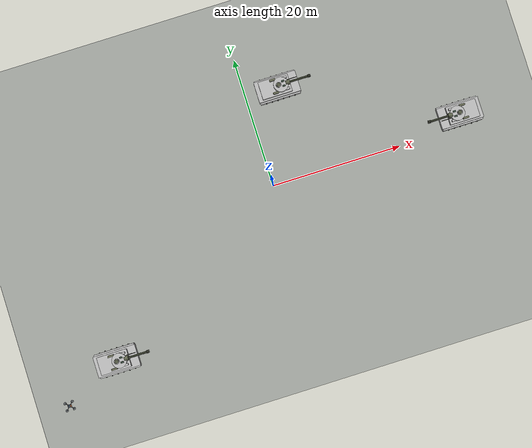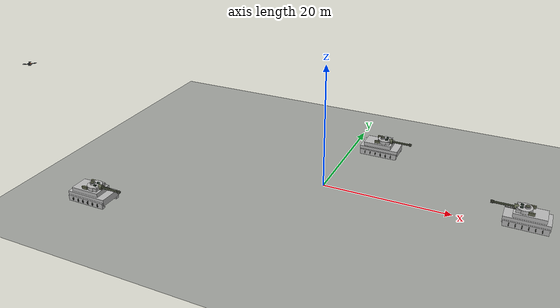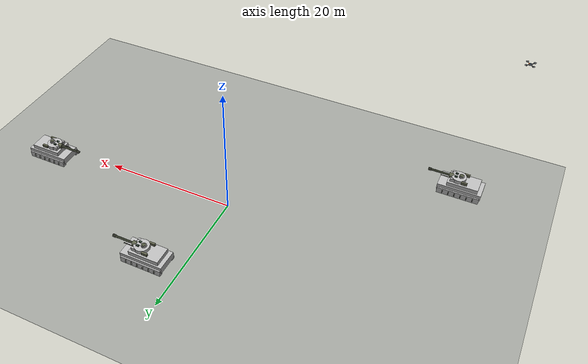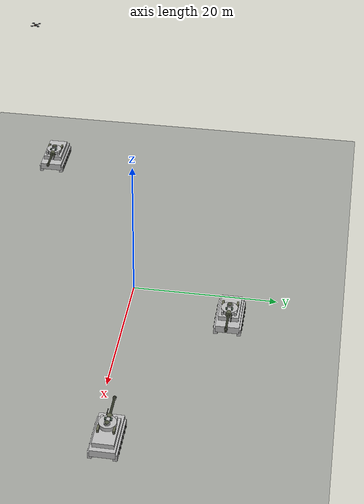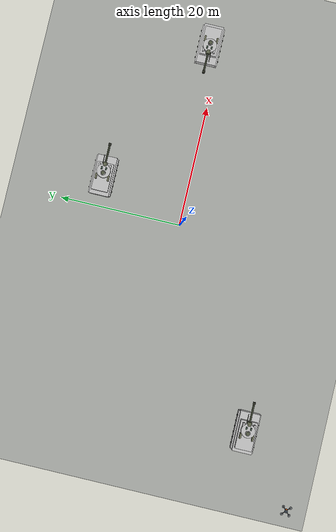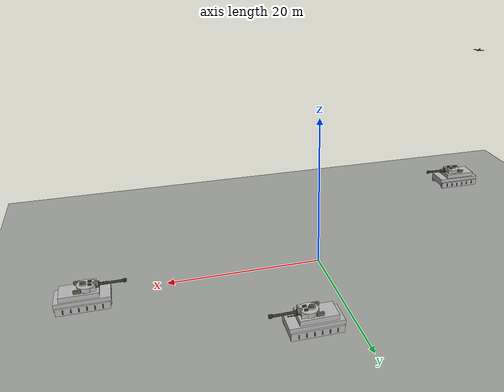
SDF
<?xml version="1.0"?>
<sdf version="1.6">
  <world name="moving_uav_vehicle_search">
    <gravity>0 0 -9.81</gravity>
    <physics name="low_load_physics" type="ode">
      <max_step_size>0.01</max_step_size>
      <real_time_update_rate>100</real_time_update_rate>
      <real_time_factor>1.0</real_time_factor>
    </physics>
    <scene>
      <ambient>0.58 0.59 0.57 1</ambient>
      <background>0.70 0.73 0.76 1</background>
      <shadows>true</shadows>
    </scene>
    <light name="sun" type="directional">
      <cast_shadows>true</cast_shadows>
      <pose>0 0 60 0.35 0.15 0</pose>
      <diffuse>0.92 0.90 0.84 1</diffuse>
      <specular>0.18 0.18 0.18 1</specular>
      <direction>-0.35 0.20 -0.91</direction>
    </light>
    <!-- Uniform concrete-colored ground, with no checker texture or clutter. -->
    <model name="concrete_ground">
      <static>true</static>
      <link name="ground">
        <collision name="ground_collision">
          <geometry><plane><normal>0 0 1</normal><size>110 82</size></plane></geometry>
        </collision>
        <visual name="ground_visual">
          <geometry><plane><normal>0 0 1</normal><size>110 82</size></plane></geometry>
          <material><ambient>0.55 0.56 0.54 1</ambient><diffuse>0.62 0.63 0.61 1</diffuse></material>
        </visual>
      </link>
    </model>

    <include><uri>model://search_quadrotor</uri><name>search_quadrotor</name><pose>-34 -21 22 0 0 0</pose></include>
    <include><uri>model://tracking_tank</uri><name>search_vehicle_alpha</name><pose>-30 -18 0 0 0 0</pose></include>
    <include><uri>model://tracking_tank</uri><name>search_vehicle_bravo</name><pose>30 2 0 0 0 3.14159265359</pose></include>
    <include><uri>model://tracking_tank</uri><name>search_vehicle_charlie</name><pose>5 14 0 0 0 0</pose></include>

    <gui fullscreen="0">
      <camera name="user_camera">
        <pose>0 -42 52 0.86 0 1.57079632679</pose>
        <view_controller>orbit</view_controller>
      </camera>
    </gui>
  </world>
</sdf>

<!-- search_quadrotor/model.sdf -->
<sdf version="1.6">
  <model name="search_quadrotor">
    <static>false</static>
    <allow_auto_disable>false</allow_auto_disable>
    <link name="base_link">
      <gravity>false</gravity>
      <kinematic>true</kinematic>
      <inertial>
        <mass>2.0</mass>
        <inertia><ixx>0.08</ixx><iyy>0.08</iyy><izz>0.12</izz></inertia>
      </inertial>
      <visual name="body">
        <geometry><box><size>0.48 0.38 0.12</size></box></geometry>
        <material><ambient>0.10 0.12 0.14 1</ambient><diffuse>0.16 0.19 0.22 1</diffuse></material>
      </visual>
      <visual name="front_marker">
        <pose>0.19 0 0.072 0 0 0</pose>
        <geometry><box><size>0.10 0.24 0.025</size></box></geometry>
        <material><ambient>0.95 0.32 0.06 1</ambient><diffuse>1.0 0.42 0.08 1</diffuse></material>
      </visual>
      <visual name="arm_front_left">
        <pose>0.23 0.23 0.015 0 0 0.7853981634</pose>
        <geometry><box><size>0.72 0.055 0.045</size></box></geometry>
        <material><ambient>0.12 0.14 0.16 1</ambient><diffuse>0.18 0.20 0.22 1</diffuse></material>
      </visual>
      <visual name="arm_rear_left">
        <pose>-0.23 0.23 0.015 0 0 -0.7853981634</pose>
        <geometry><box><size>0.72 0.055 0.045</size></box></geometry>
        <material><ambient>0.12 0.14 0.16 1</ambient><diffuse>0.18 0.20 0.22 1</diffuse></material>
      </visual>
      <visual name="arm_front_right">
        <pose>0.23 -0.23 0.015 0 0 -0.7853981634</pose>
        <geometry><box><size>0.72 0.055 0.045</size></box></geometry>
        <material><ambient>0.12 0.14 0.16 1</ambient><diffuse>0.18 0.20 0.22 1</diffuse></material>
      </visual>
      <visual name="arm_rear_right">
        <pose>-0.23 -0.23 0.015 0 0 0.7853981634</pose>
        <geometry><box><size>0.72 0.055 0.045</size></box></geometry>
        <material><ambient>0.12 0.14 0.16 1</ambient><diffuse>0.18 0.20 0.22 1</diffuse></material>
      </visual>
      <visual name="rotor_front_left">
        <pose>0.48 0.48 0.055 0 0 0</pose>
        <geometry><cylinder><radius>0.18</radius><length>0.025</length></cylinder></geometry>
        <material><ambient>0.24 0.26 0.28 0.75</ambient><diffuse>0.32 0.34 0.36 0.75</diffuse></material>
      </visual>
      <visual name="rotor_front_right">
        <pose>0.48 -0.48 0.055 0 0 0</pose>
        <geometry><cylinder><radius>0.18</radius><length>0.025</length></cylinder></geometry>
        <material><ambient>0.24 0.26 0.28 0.75</ambient><diffuse>0.32 0.34 0.36 0.75</diffuse></material>
      </visual>
      <visual name="rotor_rear_left">
        <pose>-0.48 0.48 0.055 0 0 0</pose>
        <geometry><cylinder><radius>0.18</radius><length>0.025</length></cylinder></geometry>
        <material><ambient>0.24 0.26 0.28 0.75</ambient><diffuse>0.32 0.34 0.36 0.75</diffuse></material>
      </visual>
      <visual name="rotor_rear_right">
        <pose>-0.48 -0.48 0.055 0 0 0</pose>
        <geometry><cylinder><radius>0.18</radius><length>0.025</length></cylinder></geometry>
        <material><ambient>0.24 0.26 0.28 0.75</ambient><diffuse>0.32 0.34 0.36 0.75</diffuse></material>
      </visual>
      <sensor name="fixed_camera" type="camera">
        <pose>0.10 0 -0.16 0 1.57079632679 0</pose>
        <always_on>true</always_on>
        <update_rate>10</update_rate>
        <visualize>false</visualize>
        <camera>
          <horizontal_fov>1.22</horizontal_fov>
          <image><width>640</width><height>480</height><format>R8G8B8</format></image>
          <clip><near>0.25</near><far>150</far></clip>
        </camera>
        <plugin name="fixed_camera_ros" filename="libgazebo_ros_camera.so">
          <robotNamespace>/moving_uav_search</robotNamespace>
          <cameraName>fixed_camera</cameraName>
          <imageTopicName>image_raw</imageTopicName>
          <cameraInfoTopicName>camera_info</cameraInfoTopicName>
          <frameName>moving_uav_search/fixed_camera_optical_frame</frameName>
          <updateRate>10</updateRate>
        </plugin>
      </sensor>
    </link>
  </model>
</sdf>

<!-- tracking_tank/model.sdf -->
<sdf version="1.6">
  <!-- Deliberately primitive-only: low GPU load, no unverified external mesh licence. -->
  <model name="tracking_tank">
    <static>false</static>
    <allow_auto_disable>false</allow_auto_disable>
    <link name="base_link">
      <gravity>false</gravity>
      <self_collide>false</self_collide>
      <kinematic>false</kinematic>
      <inertial>
        <mass>1800.0</mass>
        <inertia><ixx>900</ixx><iyy>1400</iyy><izz>1700</izz></inertia>
      </inertial>
      <visual name="left_track">
        <pose>0 1.55 0.62 0 0 0</pose>
        <geometry><box><size>6.25 0.54 0.94</size></box></geometry>
        <material><script><uri>model://tracking_tank/materials/scripts</uri><uri>model://tracking_tank/materials/textures</uri><name>XdUavTrack/TrackRubber</name></script></material>
      </visual>
      <visual name="right_track">
        <pose>0 -1.55 0.62 0 0 0</pose>
        <geometry><box><size>6.25 0.54 0.94</size></box></geometry>
        <material><script><uri>model://tracking_tank/materials/scripts</uri><uri>model://tracking_tank/materials/textures</uri><name>XdUavTrack/TrackRubber</name></script></material>
      </visual>
      <!-- Six road wheels on each track add a recognizable lower silhouette. -->
      <visual name="road_wheel_left_1"><pose>-2.25 1.62 0.60 0 1.57079632679 0</pose><geometry><cylinder><radius>0.34</radius><length>0.12</length></cylinder></geometry><material><ambient>0.13 0.14 0.12 1</ambient><diffuse>0.22 0.23 0.20 1</diffuse></material></visual>
      <visual name="road_wheel_left_2"><pose>-1.35 1.62 0.60 0 1.57079632679 0</pose><geometry><cylinder><radius>0.34</radius><length>0.12</length></cylinder></geometry><material><ambient>0.13 0.14 0.12 1</ambient><diffuse>0.22 0.23 0.20 1</diffuse></material></visual>
      <visual name="road_wheel_left_3"><pose>-0.45 1.62 0.60 0 1.57079632679 0</pose><geometry><cylinder><radius>0.34</radius><length>0.12</length></cylinder></geometry><material><ambient>0.13 0.14 0.12 1</ambient><diffuse>0.22 0.23 0.20 1</diffuse></material></visual>
      <visual name="road_wheel_left_4"><pose>0.45 1.62 0.60 0 1.57079632679 0</pose><geometry><cylinder><radius>0.34</radius><length>0.12</length></cylinder></geometry><material><ambient>0.13 0.14 0.12 1</ambient><diffuse>0.22 0.23 0.20 1</diffuse></material></visual>
      <visual name="road_wheel_left_5"><pose>1.35 1.62 0.60 0 1.57079632679 0</pose><geometry><cylinder><radius>0.34</radius><length>0.12</length></cylinder></geometry><material><ambient>0.13 0.14 0.12 1</ambient><diffuse>0.22 0.23 0.20 1</diffuse></material></visual>
      <visual name="road_wheel_left_6"><pose>2.25 1.62 0.60 0 1.57079632679 0</pose><geometry><cylinder><radius>0.34</radius><length>0.12</length></cylinder></geometry><material><ambient>0.13 0.14 0.12 1</ambient><diffuse>0.22 0.23 0.20 1</diffuse></material></visual>
      <visual name="road_wheel_right_1"><pose>-2.25 -1.62 0.60 0 1.57079632679 0</pose><geometry><cylinder><radius>0.34</radius><length>0.12</length></cylinder></geometry><material><ambient>0.13 0.14 0.12 1</ambient><diffuse>0.22 0.23 0.20 1</diffuse></material></visual>
      <visual name="road_wheel_right_2"><pose>-1.35 -1.62 0.60 0 1.57079632679 0</pose><geometry><cylinder><radius>0.34</radius><length>0.12</length></cylinder></geometry><material><ambient>0.13 0.14 0.12 1</ambient><diffuse>0.22 0.23 0.20 1</diffuse></material></visual>
      <visual name="road_wheel_right_3"><pose>-0.45 -1.62 0.60 0 1.57079632679 0</pose><geometry><cylinder><radius>0.34</radius><length>0.12</length></cylinder></geometry><material><ambient>0.13 0.14 0.12 1</ambient><diffuse>0.22 0.23 0.20 1</diffuse></material></visual>
      <visual name="road_wheel_right_4"><pose>0.45 -1.62 0.60 0 1.57079632679 0</pose><geometry><cylinder><radius>0.34</radius><length>0.12</length></cylinder></geometry><material><ambient>0.13 0.14 0.12 1</ambient><diffuse>0.22 0.23 0.20 1</diffuse></material></visual>
      <visual name="road_wheel_right_5"><pose>1.35 -1.62 0.60 0 1.57079632679 0</pose><geometry><cylinder><radius>0.34</radius><length>0.12</length></cylinder></geometry><material><ambient>0.13 0.14 0.12 1</ambient><diffuse>0.22 0.23 0.20 1</diffuse></material></visual>
      <visual name="road_wheel_right_6"><pose>2.25 -1.62 0.60 0 1.57079632679 0</pose><geometry><cylinder><radius>0.34</radius><length>0.12</length></cylinder></geometry><material><ambient>0.13 0.14 0.12 1</ambient><diffuse>0.22 0.23 0.20 1</diffuse></material></visual>
      <visual name="hull">
        <pose>0 0 1.10 0 0 0</pose>
        <geometry><box><size>6.50 3.20 1.00</size></box></geometry>
        <material><script><uri>model://tracking_tank/materials/scripts</uri><uri>model://tracking_tank/materials/textures</uri><name>XdUavTrack/BenchmarkCamo</name></script></material>
      </visual>
      <visual name="upper_hull">
        <pose>-0.32 0 1.88 0 0 0</pose>
        <geometry><box><size>4.62 2.72 0.74</size></box></geometry>
        <material><script><uri>model://tracking_tank/materials/scripts</uri><uri>model://tracking_tank/materials/textures</uri><name>XdUavTrack/BenchmarkCamo</name></script></material>
      </visual>
      <visual name="turret_ring">
        <pose>0.58 0 2.25 0 0 0</pose>
        <geometry><cylinder><radius>1.10</radius><length>0.18</length></cylinder></geometry>
        <material><ambient>0.18 0.20 0.15 1</ambient><diffuse>0.30 0.32 0.24 1</diffuse></material>
      </visual>
      <visual name="turret">
        <pose>0.58 0 2.55 0 0 0</pose>
        <geometry><cylinder><radius>1.12</radius><length>0.56</length></cylinder></geometry>
        <material><script><uri>model://tracking_tank/materials/scripts</uri><uri>model://tracking_tank/materials/textures</uri><name>XdUavTrack/BenchmarkCamo</name></script></material>
      </visual>
      <visual name="turret_left_cheek">
        <pose>1.10 0.88 2.55 0 0 0</pose>
        <geometry><box><size>1.18 0.30 0.50</size></box></geometry>
        <material><script><uri>model://tracking_tank/materials/scripts</uri><uri>model://tracking_tank/materials/textures</uri><name>XdUavTrack/BenchmarkCamo</name></script></material>
      </visual>
      <visual name="turret_right_cheek">
        <pose>1.10 -0.88 2.55 0 0 0</pose>
        <geometry><box><size>1.18 0.30 0.50</size></box></geometry>
        <material><script><uri>model://tracking_tank/materials/scripts</uri><uri>model://tracking_tank/materials/textures</uri><name>XdUavTrack/BenchmarkCamo</name></script></material>
      </visual>
      <visual name="gun_mantlet">
        <pose>1.67 0 2.57 0 1.57079632679 0</pose>
        <geometry><cylinder><radius>0.38</radius><length>0.62</length></cylinder></geometry>
        <material><ambient>0.22 0.24 0.18 1</ambient><diffuse>0.36 0.38 0.29 1</diffuse></material>
      </visual>
      <visual name="barrel">
        <pose>3.15 0 2.58 0 1.57079632679 0</pose>
        <geometry><cylinder><radius>0.15</radius><length>3.45</length></cylinder></geometry>
        <material><ambient>0.10 0.11 0.08 1</ambient><diffuse>0.19 0.21 0.15 1</diffuse></material>
      </visual>
      <visual name="muzzle_brake">
        <pose>4.98 0 2.58 0 1.57079632679 0</pose>
        <geometry><cylinder><radius>0.22</radius><length>0.42</length></cylinder></geometry>
        <material><ambient>0.08 0.09 0.07 1</ambient><diffuse>0.15 0.16 0.12 1</diffuse></material>
      </visual>
      <visual name="coaxial_barrel">
        <pose>2.45 0.43 2.48 0 1.57079632679 0</pose>
        <geometry><cylinder><radius>0.045</radius><length>1.45</length></cylinder></geometry>
        <material><ambient>0.08 0.09 0.07 1</ambient><diffuse>0.16 0.17 0.13 1</diffuse></material>
      </visual>
      <visual name="commander_cupola">
        <pose>0.22 0 2.92 0 0 0</pose>
        <geometry><cylinder><radius>0.40</radius><length>0.22</length></cylinder></geometry>
        <material><script><uri>model://tracking_tank/materials/scripts</uri><uri>model://tracking_tank/materials/textures</uri><name>XdUavTrack/BenchmarkCamo</name></script></material>
      </visual>
      <visual name="commander_hatch">
        <pose>0.22 0 3.07 0 0 0</pose>
        <geometry><cylinder><radius>0.30</radius><length>0.08</length></cylinder></geometry>
        <material><ambient>0.18 0.20 0.15 1</ambient><diffuse>0.30 0.32 0.24 1</diffuse></material>
      </visual>
      <visual name="sight_left">
        <pose>0.98 0.36 2.91 0 0.10 0</pose>
        <geometry><box><size>0.42 0.24 0.20</size></box></geometry>
        <material><ambient>0.10 0.14 0.12 1</ambient><diffuse>0.20 0.27 0.22 1</diffuse></material>
      </visual>
      <visual name="sight_right">
        <pose>0.98 -0.36 2.91 0 -0.10 0</pose>
        <geometry><box><size>0.42 0.24 0.20</size></box></geometry>
        <material><ambient>0.10 0.14 0.12 1</ambient><diffuse>0.20 0.27 0.22 1</diffuse></material>
      </visual>
      <visual name="turret_stowage_left">
        <pose>-0.45 1.00 2.53 0 0 0</pose>
        <geometry><box><size>0.88 0.28 0.42</size></box></geometry>
        <material><ambient>0.25 0.27 0.20 1</ambient><diffuse>0.39 0.40 0.31 1</diffuse></material>
      </visual>
      <visual name="turret_stowage_right">
        <pose>-0.45 -1.00 2.53 0 0 0</pose>
        <geometry><box><size>0.88 0.28 0.42</size></box></geometry>
        <material><ambient>0.25 0.27 0.20 1</ambient><diffuse>0.39 0.40 0.31 1</diffuse></material>
      </visual>
    </link>
  </model>
</sdf>
